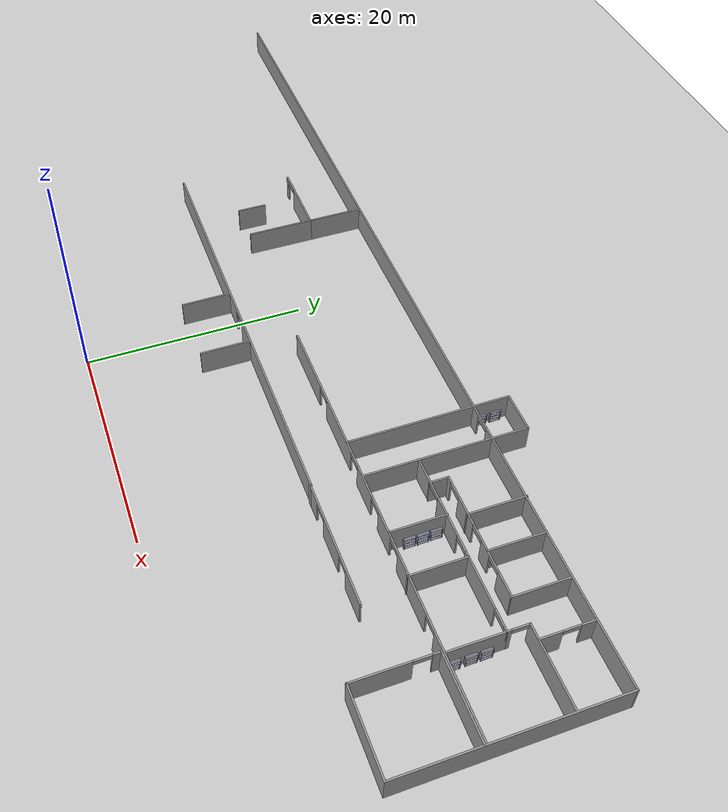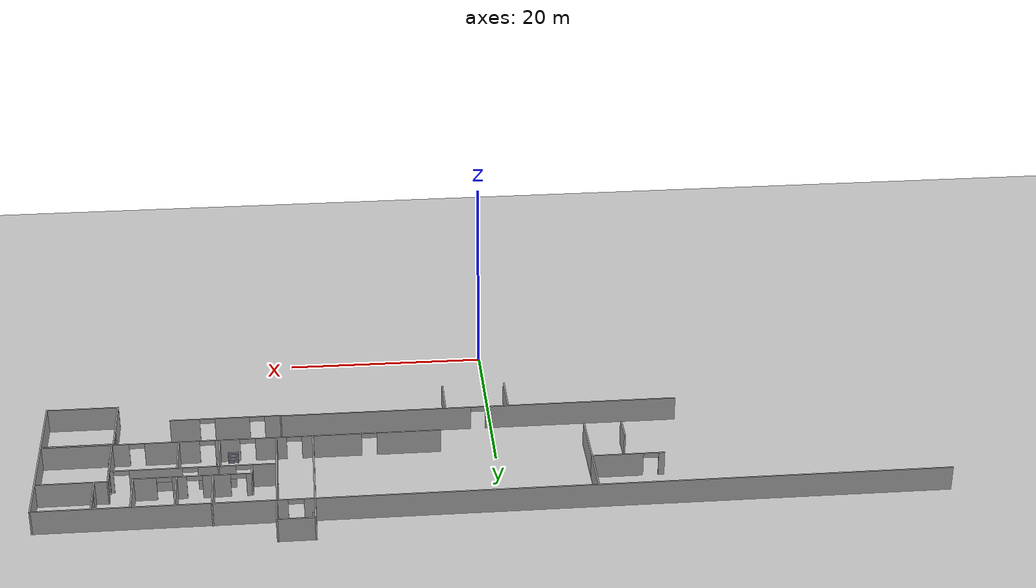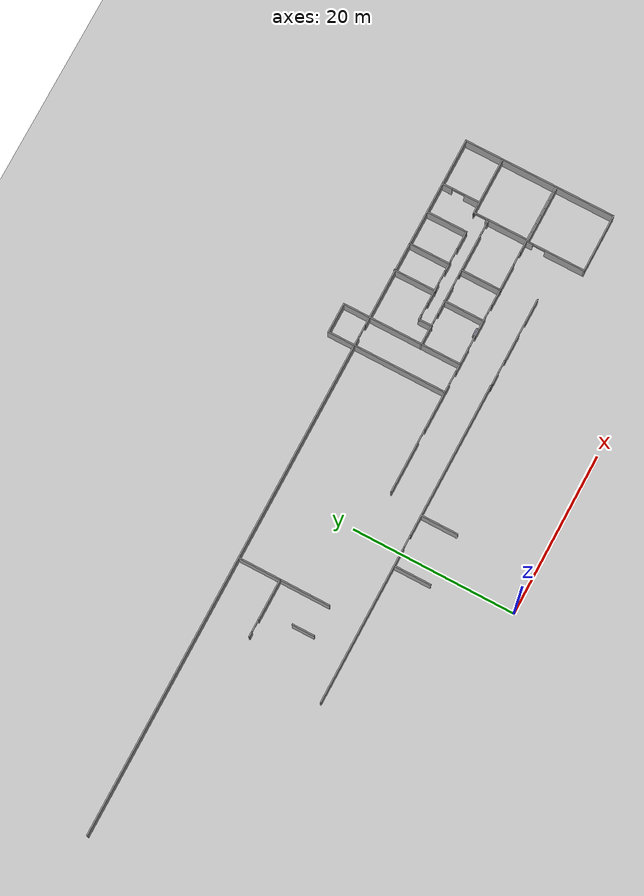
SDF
<sdf version="1.6">
 <world name="default">
  <model name="ground_plane">
   <static>1</static>
   <link name="link">
    <collision name="collision">
     <geometry><plane><normal>0 0 1</normal><size>100 100</size></plane></geometry>
     <surface><friction><ode><mu>100</mu><mu2>50</mu2></ode></friction></surface>
    </collision>
    <visual name="visual">
     <cast_shadows>0</cast_shadows>
     <geometry><plane><normal>0 0 1</normal><size>100 100</size></plane></geometry>
     <material>
      <script><uri>file://media/materials/scripts/gazebo.material</uri><name>Gazebo/Grey</name></script>
     </material>
    </visual>
   </link>
  </model>
  <model name="aule_N">
   <pose>0.3344 -1.4491 0 0 -0 0</pose>
   <link name="Wall_103">
    <pose>26.3919 15.3997 0 0 -0 3.14159</pose>
    <visual name="Wall_103_Visual_0">
     <pose>-4.01282 0 1.25 0 -0 0</pose>
     <geometry><box><size>2.97436 0.15 2.5</size></box></geometry>
     <material>
      <script><uri>file://media/materials/scripts/gazebo.material</uri><name>Gazebo/Grey</name></script>
      <ambient>1 1 1 1</ambient>
     </material>
    </visual>
    <collision name="Wall_103_Collision_0">
     <geometry><box><size>2.97436 0.15 2.5</size></box></geometry>
     <pose>-4.01282 0 1.25 0 -0 0</pose>
    </collision>
    <visual name="Wall_103_Visual_1">
     <pose>0.712222 0 1.25 0 -0 0</pose>
     <geometry><box><size>3.47573 0.15 2.5</size></box></geometry>
     <material>
      <script><uri>file://media/materials/scripts/gazebo.material</uri><name>Gazebo/Grey</name></script>
      <ambient>1 1 1 1</ambient>
     </material>
    </visual>
    <collision name="Wall_103_Collision_1">
     <geometry><box><size>3.47573 0.15 2.5</size></box></geometry>
     <pose>0.712222 0 1.25 0 -0 0</pose>
    </collision>
    <visual name="Wall_103_Visual_2">
     <pose>4.72504 0 1.25 0 -0 0</pose>
     <geometry><box><size>1.54991 0.15 2.5</size></box></geometry>
     <material>
      <script><uri>file://media/materials/scripts/gazebo.material</uri><name>Gazebo/Grey</name></script>
      <ambient>1 1 1 1</ambient>
     </material>
    </visual>
    <collision name="Wall_103_Collision_2">
     <geometry><box><size>1.54991 0.15 2.5</size></box></geometry>
     <pose>4.72504 0 1.25 0 -0 0</pose>
    </collision>
    <visual name="Wall_103_Visual_3">
     <pose>-1.77564 0 2.25 0 -0 0</pose>
     <geometry><box><size>1.5 0.15 0.5</size></box></geometry>
     <material>
      <script><uri>file://media/materials/scripts/gazebo.material</uri><name>Gazebo/Grey</name></script>
      <ambient>1 1 1 1</ambient>
     </material>
    </visual>
    <collision name="Wall_103_Collision_3">
     <geometry><box><size>1.5 0.15 0.5</size></box></geometry>
     <pose>-1.77564 0 2.25 0 -0 0</pose>
    </collision>
    <visual name="Wall_103_Visual_4">
     <pose>3.20009 0 2.25 0 -0 0</pose>
     <geometry><box><size>1.5 0.15 0.5</size></box></geometry>
     <material>
      <script><uri>file://media/materials/scripts/gazebo.material</uri><name>Gazebo/Grey</name></script>
      <ambient>1 1 1 1</ambient>
     </material>
    </visual>
    <collision name="Wall_103_Collision_4">
     <geometry><box><size>1.5 0.15 0.5</size></box></geometry>
     <pose>3.20009 0 2.25 0 -0 0</pose>
    </collision>
   </link>
   <link name="Wall_104">
    <collision name="Wall_104_Collision">
     <geometry><box><size>0.5 0.15 2.5</size></box></geometry>
     <pose>0 0 1.25 0 -0 0</pose>
    </collision>
    <visual name="Wall_104_Visual">
     <pose>0 0 1.25 0 -0 0</pose>
     <geometry><box><size>0.5 0.15 2.5</size></box></geometry>
     <material>
      <script><uri>file://media/materials/scripts/gazebo.material</uri><name>Gazebo/Grey</name></script>
      <ambient>1 1 1 1</ambient>
     </material>
    </visual>
    <pose>20.7919 15.3997 0 0 -0 3.14159</pose>
   </link>
   <link name="Wall_119">
    <pose>24.6226 19.6001 0 0 -0 0</pose>
    <visual name="Wall_119_Visual_0">
     <pose>-16.4435 0 1.25 0 -0 0</pose>
     <geometry><box><size>6.36296 0.15 2.5</size></box></geometry>
     <material>
      <script><uri>file://media/materials/scripts/gazebo.material</uri><name>Gazebo/Grey</name></script>
      <ambient>1 1 1 1</ambient>
     </material>
    </visual>
    <collision name="Wall_119_Collision_0">
     <geometry><box><size>6.36296 0.15 2.5</size></box></geometry>
     <pose>-16.4435 0 1.25 0 -0 0</pose>
    </collision>
    <visual name="Wall_119_Visual_1">
     <pose>-8.80227 0 1.25 0 -0 0</pose>
     <geometry><box><size>5.91956 0.15 2.5</size></box></geometry>
     <material>
      <script><uri>file://media/materials/scripts/gazebo.material</uri><name>Gazebo/Grey</name></script>
      <ambient>1 1 1 1</ambient>
     </material>
    </visual>
    <collision name="Wall_119_Collision_1">
     <geometry><box><size>5.91956 0.15 2.5</size></box></geometry>
     <pose>-8.80227 0 1.25 0 -0 0</pose>
    </collision>
    <visual name="Wall_119_Visual_2">
     <pose>-2.80072 0 1.25 0 -0 0</pose>
     <geometry><box><size>3.08352 0.15 2.5</size></box></geometry>
     <material>
      <script><uri>file://media/materials/scripts/gazebo.material</uri><name>Gazebo/Grey</name></script>
      <ambient>1 1 1 1</ambient>
     </material>
    </visual>
    <collision name="Wall_119_Collision_2">
     <geometry><box><size>3.08352 0.15 2.5</size></box></geometry>
     <pose>-2.80072 0 1.25 0 -0 0</pose>
    </collision>
    <visual name="Wall_119_Visual_3">
     <pose>1.4683 0 1.25 0 -0 0</pose>
     <geometry><box><size>2.45453 0.15 2.5</size></box></geometry>
     <material>
      <script><uri>file://media/materials/scripts/gazebo.material</uri><name>Gazebo/Grey</name></script>
      <ambient>1 1 1 1</ambient>
     </material>
    </visual>
    <collision name="Wall_119_Collision_3">
     <geometry><box><size>2.45453 0.15 2.5</size></box></geometry>
     <pose>1.4683 0 1.25 0 -0 0</pose>
    </collision>
    <visual name="Wall_119_Visual_4">
     <pose>6.88834 0 1.25 0 -0 0</pose>
     <geometry><box><size>5.38554 0.15 2.5</size></box></geometry>
     <material>
      <script><uri>file://media/materials/scripts/gazebo.material</uri><name>Gazebo/Grey</name></script>
      <ambient>1 1 1 1</ambient>
     </material>
    </visual>
    <collision name="Wall_119_Collision_4">
     <geometry><box><size>5.38554 0.15 2.5</size></box></geometry>
     <pose>6.88834 0 1.25 0 -0 0</pose>
    </collision>
    <visual name="Wall_119_Visual_5">
     <pose>15.3531 0 1.25 0 -0 0</pose>
     <geometry><box><size>8.54389 0.15 2.5</size></box></geometry>
     <material>
      <script><uri>file://media/materials/scripts/gazebo.material</uri><name>Gazebo/Grey</name></script>
      <ambient>1 1 1 1</ambient>
     </material>
    </visual>
    <collision name="Wall_119_Collision_5">
     <geometry><box><size>8.54389 0.15 2.5</size></box></geometry>
     <pose>15.3531 0 1.25 0 -0 0</pose>
    </collision>
    <visual name="Wall_119_Visual_6">
     <pose>-12.512 0 2.25 0 -0 0</pose>
     <geometry><box><size>1.5 0.15 0.5</size></box></geometry>
     <material>
      <script><uri>file://media/materials/scripts/gazebo.material</uri><name>Gazebo/Grey</name></script>
      <ambient>1 1 1 1</ambient>
     </material>
    </visual>
    <collision name="Wall_119_Collision_6">
     <geometry><box><size>1.5 0.15 0.5</size></box></geometry>
     <pose>-12.512 0 2.25 0 -0 0</pose>
    </collision>
    <visual name="Wall_119_Visual_7">
     <pose>-5.09248 0 2.25 0 -0 0</pose>
     <geometry><box><size>1.5 0.15 0.5</size></box></geometry>
     <material>
      <script><uri>file://media/materials/scripts/gazebo.material</uri><name>Gazebo/Grey</name></script>
      <ambient>1 1 1 1</ambient>
     </material>
    </visual>
    <collision name="Wall_119_Collision_7">
     <geometry><box><size>1.5 0.15 0.5</size></box></geometry>
     <pose>-5.09248 0 2.25 0 -0 0</pose>
    </collision>
    <visual name="Wall_119_Visual_8">
     <pose>-0.508963 0 2.25 0 -0 0</pose>
     <geometry><box><size>1.5 0.15 0.5</size></box></geometry>
     <material>
      <script><uri>file://media/materials/scripts/gazebo.material</uri><name>Gazebo/Grey</name></script>
      <ambient>1 1 1 1</ambient>
     </material>
    </visual>
    <collision name="Wall_119_Collision_8">
     <geometry><box><size>1.5 0.15 0.5</size></box></geometry>
     <pose>-0.508963 0 2.25 0 -0 0</pose>
    </collision>
    <visual name="Wall_119_Visual_9">
     <pose>3.44557 0 2.25 0 -0 0</pose>
     <geometry><box><size>1.5 0.15 0.5</size></box></geometry>
     <material>
      <script><uri>file://media/materials/scripts/gazebo.material</uri><name>Gazebo/Grey</name></script>
      <ambient>1 1 1 1</ambient>
     </material>
    </visual>
    <collision name="Wall_119_Collision_9">
     <geometry><box><size>1.5 0.15 0.5</size></box></geometry>
     <pose>3.44557 0 2.25 0 -0 0</pose>
    </collision>
    <visual name="Wall_119_Visual_10">
     <pose>10.3311 0 2.25 0 -0 0</pose>
     <geometry><box><size>1.5 0.15 0.5</size></box></geometry>
     <material>
      <script><uri>file://media/materials/scripts/gazebo.material</uri><name>Gazebo/Grey</name></script>
      <ambient>1 1 1 1</ambient>
     </material>
    </visual>
    <collision name="Wall_119_Collision_10">
     <geometry><box><size>1.5 0.15 0.5</size></box></geometry>
     <pose>10.3311 0 2.25 0 -0 0</pose>
    </collision>
   </link>
   <link name="Wall_133">
    <collision name="Wall_133_Collision">
     <geometry><box><size>2.75 0.15 2.5</size></box></geometry>
     <pose>0 0 1.25 0 -0 0</pose>
    </collision>
    <visual name="Wall_133_Visual">
     <pose>0 0 1.25 0 -0 0</pose>
     <geometry><box><size>2.75 0.15 2.5</size></box></geometry>
     <material>
      <script><uri>file://media/materials/scripts/gazebo.material</uri><name>Gazebo/Grey</name></script>
      <ambient>1 1 1 1</ambient>
     </material>
    </visual>
    <pose>-13.0958 20.8964 0 0 0 -1.5708</pose>
   </link>
   <link name="Wall_135">
    <pose>-12.9035 25.7612 0 0 -0 0</pose>
    <visual name="Wall_135_Visual_0">
     <pose>-3.3201 0 1.25 0 -0 0</pose>
     <geometry><box><size>0.60979 0.15 2.5</size></box></geometry>
     <material>
      <script><uri>file://media/materials/scripts/gazebo.material</uri><name>Gazebo/Grey</name></script>
      <ambient>1 1 1 1</ambient>
     </material>
    </visual>
    <collision name="Wall_135_Collision_0">
     <geometry><box><size>0.60979 0.15 2.5</size></box></geometry>
     <pose>-3.3201 0 1.25 0 -0 0</pose>
    </collision>
    <visual name="Wall_135_Visual_1">
     <pose>1.05489 0 1.25 0 -0 0</pose>
     <geometry><box><size>5.14021 0.15 2.5</size></box></geometry>
     <material>
      <script><uri>file://media/materials/scripts/gazebo.material</uri><name>Gazebo/Grey</name></script>
      <ambient>1 1 1 1</ambient>
     </material>
    </visual>
    <collision name="Wall_135_Collision_1">
     <geometry><box><size>5.14021 0.15 2.5</size></box></geometry>
     <pose>1.05489 0 1.25 0 -0 0</pose>
    </collision>
    <visual name="Wall_135_Visual_2">
     <pose>-2.26521 0 2.25 0 -0 0</pose>
     <geometry><box><size>1.5 0.15 0.5</size></box></geometry>
     <material>
      <script><uri>file://media/materials/scripts/gazebo.material</uri><name>Gazebo/Grey</name></script>
      <ambient>1 1 1 1</ambient>
     </material>
    </visual>
    <collision name="Wall_135_Collision_2">
     <geometry><box><size>1.5 0.15 0.5</size></box></geometry>
     <pose>-2.26521 0 2.25 0 -0 0</pose>
    </collision>
   </link>
   <link name="Wall_136">
    <collision name="Wall_136_Collision">
     <geometry><box><size>5.25 0.15 2.5</size></box></geometry>
     <pose>0 0 1.25 0 -0 0</pose>
    </collision>
    <visual name="Wall_136_Visual">
     <pose>0 0 1.25 0 -0 0</pose>
     <geometry><box><size>5.25 0.15 2.5</size></box></geometry>
     <material>
      <script><uri>file://media/materials/scripts/gazebo.material</uri><name>Gazebo/Grey</name></script>
      <ambient>1 1 1 1</ambient>
     </material>
    </visual>
    <pose>-9.35351 28.3112 0 0 -0 1.5708</pose>
   </link>
   <link name="Wall_138">
    <collision name="Wall_138_Collision">
     <geometry><box><size>6.25 0.15 2.5</size></box></geometry>
     <pose>0 0 1.25 0 -0 0</pose>
    </collision>
    <visual name="Wall_138_Visual">
     <pose>0 0 1.25 0 -0 0</pose>
     <geometry><box><size>6.25 0.15 2.5</size></box></geometry>
     <material>
      <script><uri>file://media/materials/scripts/gazebo.material</uri><name>Gazebo/Grey</name></script>
      <ambient>1 1 1 1</ambient>
     </material>
    </visual>
    <pose>-9.35351 22.7112 0 0 0 -1.5708</pose>
   </link>
   <link name="Wall_142">
    <collision name="Wall_142_Collision">
     <geometry><box><size>14.75 0.15 2.5</size></box></geometry>
     <pose>0 0 1.25 0 -0 0</pose>
    </collision>
    <visual name="Wall_142_Visual">
     <pose>0 0 1.25 0 -0 0</pose>
     <geometry><box><size>14.75 0.15 2.5</size></box></geometry>
     <material>
      <script><uri>file://media/materials/scripts/gazebo.material</uri><name>Gazebo/Grey</name></script>
      <ambient>1 1 1 1</ambient>
     </material>
    </visual>
    <pose>17.6842 26.9006 0 0 -0 1.5708</pose>
   </link>
   <link name="Wall_143">
    <collision name="Wall_143_Collision">
     <geometry><box><size>3.75 0.15 2.5</size></box></geometry>
     <pose>0 0 1.25 0 -0 0</pose>
    </collision>
    <visual name="Wall_143_Visual">
     <pose>0 0 1.25 0 -0 0</pose>
     <geometry><box><size>3.75 0.15 2.5</size></box></geometry>
     <material>
      <script><uri>file://media/materials/scripts/gazebo.material</uri><name>Gazebo/Grey</name></script>
      <ambient>1 1 1 1</ambient>
     </material>
    </visual>
    <pose>19.4842 34.2006 0 0 -0 0</pose>
   </link>
   <link name="Wall_144">
    <collision name="Wall_144_Collision">
     <geometry><box><size>14.75 0.15 2.5</size></box></geometry>
     <pose>0 0 1.25 0 -0 0</pose>
    </collision>
    <visual name="Wall_144_Visual">
     <pose>0 0 1.25 0 -0 0</pose>
     <geometry><box><size>14.75 0.15 2.5</size></box></geometry>
     <material>
      <script><uri>file://media/materials/scripts/gazebo.material</uri><name>Gazebo/Grey</name></script>
      <ambient>1 1 1 1</ambient>
     </material>
    </visual>
    <pose>21.2842 26.9006 0 0 0 -1.5708</pose>
   </link>
   <link name="Wall_147">
    <collision name="Wall_147_Collision">
     <geometry><box><size>4.5 0.15 2.5</size></box></geometry>
     <pose>0 0 1.25 0 -0 0</pose>
    </collision>
    <visual name="Wall_147_Visual">
     <pose>0 0 1.25 0 -0 0</pose>
     <geometry><box><size>4.5 0.15 2.5</size></box></geometry>
     <material>
      <script><uri>file://media/materials/scripts/gazebo.material</uri><name>Gazebo/Grey</name></script>
      <ambient>1 1 1 1</ambient>
     </material>
    </visual>
    <pose>-2.1259 13.1481 0 0 0 -1.5708</pose>
   </link>
   <link name="Wall_149">
    <collision name="Wall_149_Collision">
     <geometry><box><size>4.5 0.15 2.5</size></box></geometry>
     <pose>0 0 1.25 0 -0 0</pose>
    </collision>
    <visual name="Wall_149_Visual">
     <pose>0 0 1.25 0 -0 0</pose>
     <geometry><box><size>4.5 0.15 2.5</size></box></geometry>
     <material>
      <script><uri>file://media/materials/scripts/gazebo.material</uri><name>Gazebo/Grey</name></script>
      <ambient>1 1 1 1</ambient>
     </material>
    </visual>
    <pose>4.2241 13.1481 0 0 -0 1.5708</pose>
   </link>
   <link name="Wall_151">
    <pose>37.2203 15.8955 0 0 -0 1.5708</pose>
    <visual name="Wall_151_Visual_0">
     <pose>-1.12447 0 1.25 0 -0 0</pose>
     <geometry><box><size>5.00105 0.15 2.5</size></box></geometry>
     <material>
      <script><uri>file://media/materials/scripts/gazebo.material</uri><name>Gazebo/Grey</name></script>
      <ambient>1 1 1 1</ambient>
     </material>
    </visual>
    <collision name="Wall_151_Collision_0">
     <geometry><box><size>5.00105 0.15 2.5</size></box></geometry>
     <pose>-1.12447 0 1.25 0 -0 0</pose>
    </collision>
    <visual name="Wall_151_Visual_1">
     <pose>3.25053 0 1.25 0 -0 0</pose>
     <geometry><box><size>0.748949 0.15 2.5</size></box></geometry>
     <material>
      <script><uri>file://media/materials/scripts/gazebo.material</uri><name>Gazebo/Grey</name></script>
      <ambient>1 1 1 1</ambient>
     </material>
    </visual>
    <collision name="Wall_151_Collision_1">
     <geometry><box><size>0.748949 0.15 2.5</size></box></geometry>
     <pose>3.25053 0 1.25 0 -0 0</pose>
    </collision>
    <visual name="Wall_151_Visual_2">
     <pose>2.12605 0 2.25 0 -0 0</pose>
     <geometry><box><size>1.5 0.15 0.5</size></box></geometry>
     <material>
      <script><uri>file://media/materials/scripts/gazebo.material</uri><name>Gazebo/Grey</name></script>
      <ambient>1 1 1 1</ambient>
     </material>
    </visual>
    <collision name="Wall_151_Collision_2">
     <geometry><box><size>1.5 0.15 0.5</size></box></geometry>
     <pose>2.12605 0 2.25 0 -0 0</pose>
    </collision>
   </link>
   <link name="Wall_152">
    <collision name="Wall_152_Collision">
     <geometry><box><size>7.25 0.15 2.5</size></box></geometry>
     <pose>0 0 1.25 0 -0 0</pose>
    </collision>
    <visual name="Wall_152_Visual">
     <pose>0 0 1.25 0 -0 0</pose>
     <geometry><box><size>7.25 0.15 2.5</size></box></geometry>
     <material>
      <script><uri>file://media/materials/scripts/gazebo.material</uri><name>Gazebo/Grey</name></script>
      <ambient>1 1 1 1</ambient>
     </material>
    </visual>
    <pose>40.7703 19.4455 0 0 -0 0</pose>
   </link>
   <link name="Wall_154">
    <pose>29.3256 24.4418 0 0 -0 0</pose>
    <visual name="Wall_154_Visual_0">
     <pose>-6.88088 0 1.25 0 -0 0</pose>
     <geometry><box><size>2.48824 0.15 2.5</size></box></geometry>
     <material>
      <script><uri>file://media/materials/scripts/gazebo.material</uri><name>Gazebo/Grey</name></script>
      <ambient>1 1 1 1</ambient>
     </material>
    </visual>
    <collision name="Wall_154_Collision_0">
     <geometry><box><size>2.48824 0.15 2.5</size></box></geometry>
     <pose>-6.88088 0 1.25 0 -0 0</pose>
    </collision>
    <visual name="Wall_154_Visual_1">
     <pose>-2.30449 0 1.25 0 -0 0</pose>
     <geometry><box><size>3.66454 0.15 2.5</size></box></geometry>
     <material>
      <script><uri>file://media/materials/scripts/gazebo.material</uri><name>Gazebo/Grey</name></script>
      <ambient>1 1 1 1</ambient>
     </material>
    </visual>
    <collision name="Wall_154_Collision_1">
     <geometry><box><size>3.66454 0.15 2.5</size></box></geometry>
     <pose>-2.30449 0 1.25 0 -0 0</pose>
    </collision>
    <visual name="Wall_154_Visual_2">
     <pose>3.58098 0 1.25 0 -0 0</pose>
     <geometry><box><size>5.10639 0.15 2.5</size></box></geometry>
     <material>
      <script><uri>file://media/materials/scripts/gazebo.material</uri><name>Gazebo/Grey</name></script>
      <ambient>1 1 1 1</ambient>
     </material>
    </visual>
    <collision name="Wall_154_Collision_2">
     <geometry><box><size>5.10639 0.15 2.5</size></box></geometry>
     <pose>3.58098 0 1.25 0 -0 0</pose>
    </collision>
    <visual name="Wall_154_Visual_3">
     <pose>7.87959 0 1.25 0 -0 0</pose>
     <geometry><box><size>0.490824 0.15 2.5</size></box></geometry>
     <material>
      <script><uri>file://media/materials/scripts/gazebo.material</uri><name>Gazebo/Grey</name></script>
      <ambient>1 1 1 1</ambient>
     </material>
    </visual>
    <collision name="Wall_154_Collision_3">
     <geometry><box><size>0.490824 0.15 2.5</size></box></geometry>
     <pose>7.87959 0 1.25 0 -0 0</pose>
    </collision>
    <visual name="Wall_154_Visual_4">
     <pose>-4.88676 0 2.25 0 -0 0</pose>
     <geometry><box><size>1.5 0.15 0.5</size></box></geometry>
     <material>
      <script><uri>file://media/materials/scripts/gazebo.material</uri><name>Gazebo/Grey</name></script>
      <ambient>1 1 1 1</ambient>
     </material>
    </visual>
    <collision name="Wall_154_Collision_4">
     <geometry><box><size>1.5 0.15 0.5</size></box></geometry>
     <pose>-4.88676 0 2.25 0 -0 0</pose>
    </collision>
    <visual name="Wall_154_Visual_5">
     <pose>0.277782 0 2.25 0 -0 0</pose>
     <geometry><box><size>1.5 0.15 0.5</size></box></geometry>
     <material>
      <script><uri>file://media/materials/scripts/gazebo.material</uri><name>Gazebo/Grey</name></script>
      <ambient>1 1 1 1</ambient>
     </material>
    </visual>
    <collision name="Wall_154_Collision_5">
     <geometry><box><size>1.5 0.15 0.5</size></box></geometry>
     <pose>0.277782 0 2.25 0 -0 0</pose>
    </collision>
    <visual name="Wall_154_Visual_6">
     <pose>6.88418 0 2.25 0 -0 0</pose>
     <geometry><box><size>1.5 0.15 0.5</size></box></geometry>
     <material>
      <script><uri>file://media/materials/scripts/gazebo.material</uri><name>Gazebo/Grey</name></script>
      <ambient>1 1 1 1</ambient>
     </material>
    </visual>
    <collision name="Wall_154_Collision_6">
     <geometry><box><size>1.5 0.15 0.5</size></box></geometry>
     <pose>6.88418 0 2.25 0 -0 0</pose>
    </collision>
   </link>
   <link name="Wall_155">
    <collision name="Wall_155_Collision">
     <geometry><box><size>5 0.15 2.5</size></box></geometry>
     <pose>0 0 1.25 0 -0 0</pose>
    </collision>
    <visual name="Wall_155_Visual">
     <pose>0 0 1.25 0 -0 0</pose>
     <geometry><box><size>5 0.15 2.5</size></box></geometry>
     <material>
      <script><uri>file://media/materials/scripts/gazebo.material</uri><name>Gazebo/Grey</name></script>
      <ambient>1 1 1 1</ambient>
     </material>
    </visual>
    <pose>37.3756 22.0168 0 0 0 -1.5708</pose>
   </link>
   <link name="Wall_157">
    <collision name="Wall_157_Collision">
     <geometry><box><size>5 0.15 2.5</size></box></geometry>
     <pose>0 0 1.25 0 -0 0</pose>
    </collision>
    <visual name="Wall_157_Visual">
     <pose>0 0 1.25 0 -0 0</pose>
     <geometry><box><size>5 0.15 2.5</size></box></geometry>
     <material>
      <script><uri>file://media/materials/scripts/gazebo.material</uri><name>Gazebo/Grey</name></script>
      <ambient>1 1 1 1</ambient>
     </material>
    </visual>
    <pose>26.8585 22.0634 0 0 0 -1.5708</pose>
   </link>
   <link name="Wall_159">
    <collision name="Wall_159_Collision">
     <geometry><box><size>5 0.15 2.5</size></box></geometry>
     <pose>0 0 1.25 0 -0 0</pose>
    </collision>
    <visual name="Wall_159_Visual">
     <pose>0 0 1.25 0 -0 0</pose>
     <geometry><box><size>5 0.15 2.5</size></box></geometry>
     <material>
      <script><uri>file://media/materials/scripts/gazebo.material</uri><name>Gazebo/Grey</name></script>
      <ambient>1 1 1 1</ambient>
     </material>
    </visual>
    <pose>30.8596 21.9703 0 0 0 -1.5708</pose>
   </link>
   <link name="Wall_161">
    <pose>37.3756 25.3668 0 0 -0 1.5708</pose>
    <visual name="Wall_161_Visual_0">
     <pose>-0.779213 0 1.25 0 -0 0</pose>
     <geometry><box><size>0.441574 0.15 2.5</size></box></geometry>
     <material>
      <script><uri>file://media/materials/scripts/gazebo.material</uri><name>Gazebo/Grey</name></script>
      <ambient>1 1 1 1</ambient>
     </material>
    </visual>
    <collision name="Wall_161_Collision_0">
     <geometry><box><size>0.441574 0.15 2.5</size></box></geometry>
     <pose>-0.779213 0 1.25 0 -0 0</pose>
    </collision>
    <visual name="Wall_161_Visual_1">
     <pose>0.970787 0 1.25 0 -0 0</pose>
     <geometry><box><size>0.058426 0.15 2.5</size></box></geometry>
     <material>
      <script><uri>file://media/materials/scripts/gazebo.material</uri><name>Gazebo/Grey</name></script>
      <ambient>1 1 1 1</ambient>
     </material>
    </visual>
    <collision name="Wall_161_Collision_1">
     <geometry><box><size>0.058426 0.15 2.5</size></box></geometry>
     <pose>0.970787 0 1.25 0 -0 0</pose>
    </collision>
    <visual name="Wall_161_Visual_2">
     <pose>0.191574 0 2.25 0 -0 0</pose>
     <geometry><box><size>1.5 0.15 0.5</size></box></geometry>
     <material>
      <script><uri>file://media/materials/scripts/gazebo.material</uri><name>Gazebo/Grey</name></script>
      <ambient>1 1 1 1</ambient>
     </material>
    </visual>
    <collision name="Wall_161_Collision_2">
     <geometry><box><size>1.5 0.15 0.5</size></box></geometry>
     <pose>0.191574 0 2.25 0 -0 0</pose>
    </collision>
   </link>
   <link name="Wall_172">
    <collision name="Wall_172_Collision">
     <geometry><box><size>1.75 0.15 2.5</size></box></geometry>
     <pose>0 0 1.25 0 -0 0</pose>
    </collision>
    <visual name="Wall_172_Visual">
     <pose>0 0 1.25 0 -0 0</pose>
     <geometry><box><size>1.75 0.15 2.5</size></box></geometry>
     <material>
      <script><uri>file://media/materials/scripts/gazebo.material</uri><name>Gazebo/Grey</name></script>
      <ambient>1 1 1 1</ambient>
     </material>
    </visual>
    <pose>23.6484 25.1953 0 0 -0 1.5708</pose>
   </link>
   <link name="Wall_173">
    <pose>29.3234 25.9953 0 0 -0 0</pose>
    <visual name="Wall_173_Visual_0">
     <pose>-5.43624 0 1.25 0 -0 0</pose>
     <geometry><box><size>0.627523 0.15 2.5</size></box></geometry>
     <material>
      <script><uri>file://media/materials/scripts/gazebo.material</uri><name>Gazebo/Grey</name></script>
      <ambient>1 1 1 1</ambient>
     </material>
    </visual>
    <collision name="Wall_173_Collision_0">
     <geometry><box><size>0.627523 0.15 2.5</size></box></geometry>
     <pose>-5.43624 0 1.25 0 -0 0</pose>
    </collision>
    <visual name="Wall_173_Visual_1">
     <pose>-2.27883 0 1.25 0 -0 0</pose>
     <geometry><box><size>2.6873 0.15 2.5</size></box></geometry>
     <material>
      <script><uri>file://media/materials/scripts/gazebo.material</uri><name>Gazebo/Grey</name></script>
      <ambient>1 1 1 1</ambient>
     </material>
    </visual>
    <collision name="Wall_173_Collision_1">
     <geometry><box><size>2.6873 0.15 2.5</size></box></geometry>
     <pose>-2.27883 0 1.25 0 -0 0</pose>
    </collision>
    <visual name="Wall_173_Visual_2">
     <pose>1.25706 0 1.25 0 -0 0</pose>
     <geometry><box><size>1.38448 0.15 2.5</size></box></geometry>
     <material>
      <script><uri>file://media/materials/scripts/gazebo.material</uri><name>Gazebo/Grey</name></script>
      <ambient>1 1 1 1</ambient>
     </material>
    </visual>
    <collision name="Wall_173_Collision_2">
     <geometry><box><size>1.38448 0.15 2.5</size></box></geometry>
     <pose>1.25706 0 1.25 0 -0 0</pose>
    </collision>
    <visual name="Wall_173_Visual_3">
     <pose>4.59965 0 1.25 0 -0 0</pose>
     <geometry><box><size>2.3007 0.15 2.5</size></box></geometry>
     <material>
      <script><uri>file://media/materials/scripts/gazebo.material</uri><name>Gazebo/Grey</name></script>
      <ambient>1 1 1 1</ambient>
     </material>
    </visual>
    <collision name="Wall_173_Collision_3">
     <geometry><box><size>2.3007 0.15 2.5</size></box></geometry>
     <pose>4.59965 0 1.25 0 -0 0</pose>
    </collision>
    <visual name="Wall_173_Visual_4">
     <pose>-4.37248 0 2.25 0 -0 0</pose>
     <geometry><box><size>1.5 0.15 0.5</size></box></geometry>
     <material>
      <script><uri>file://media/materials/scripts/gazebo.material</uri><name>Gazebo/Grey</name></script>
      <ambient>1 1 1 1</ambient>
     </material>
    </visual>
    <collision name="Wall_173_Collision_4">
     <geometry><box><size>1.5 0.15 0.5</size></box></geometry>
     <pose>-4.37248 0 2.25 0 -0 0</pose>
    </collision>
    <visual name="Wall_173_Visual_5">
     <pose>-0.185179 0 2.25 0 -0 0</pose>
     <geometry><box><size>1.5 0.15 0.5</size></box></geometry>
     <material>
      <script><uri>file://media/materials/scripts/gazebo.material</uri><name>Gazebo/Grey</name></script>
      <ambient>1 1 1 1</ambient>
     </material>
    </visual>
    <collision name="Wall_173_Collision_5">
     <geometry><box><size>1.5 0.15 0.5</size></box></geometry>
     <pose>-0.185179 0 2.25 0 -0 0</pose>
    </collision>
    <visual name="Wall_173_Visual_6">
     <pose>2.6993 0 2.25 0 -0 0</pose>
     <geometry><box><size>1.5 0.15 0.5</size></box></geometry>
     <material>
      <script><uri>file://media/materials/scripts/gazebo.material</uri><name>Gazebo/Grey</name></script>
      <ambient>1 1 1 1</ambient>
     </material>
    </visual>
    <collision name="Wall_173_Collision_6">
     <geometry><box><size>1.5 0.15 0.5</size></box></geometry>
     <pose>2.6993 0 2.25 0 -0 0</pose>
    </collision>
   </link>
   <link name="Wall_174">
    <collision name="Wall_174_Collision">
     <geometry><box><size>5 0.15 2.5</size></box></geometry>
     <pose>0 0 1.25 0 -0 0</pose>
    </collision>
    <visual name="Wall_174_Visual">
     <pose>0 0 1.25 0 -0 0</pose>
     <geometry><box><size>5 0.15 2.5</size></box></geometry>
     <material>
      <script><uri>file://media/materials/scripts/gazebo.material</uri><name>Gazebo/Grey</name></script>
      <ambient>1 1 1 1</ambient>
     </material>
    </visual>
    <pose>34.9984 28.4203 0 0 -0 1.5708</pose>
   </link>
   <link name="Wall_176">
    <collision name="Wall_176_Collision">
     <geometry><box><size>5.25 0.15 2.5</size></box></geometry>
     <pose>0 0 1.25 0 -0 0</pose>
    </collision>
    <visual name="Wall_176_Visual">
     <pose>0 0 1.25 0 -0 0</pose>
     <geometry><box><size>5.25 0.15 2.5</size></box></geometry>
     <material>
      <script><uri>file://media/materials/scripts/gazebo.material</uri><name>Gazebo/Grey</name></script>
      <ambient>1 1 1 1</ambient>
     </material>
    </visual>
    <pose>27.3703 28.4806 0 0 -0 1.5708</pose>
   </link>
   <link name="Wall_178">
    <collision name="Wall_178_Collision">
     <geometry><box><size>5 0.15 2.5</size></box></geometry>
     <pose>0 0 1.25 0 -0 0</pose>
    </collision>
    <visual name="Wall_178_Visual">
     <pose>0 0 1.25 0 -0 0</pose>
     <geometry><box><size>5 0.15 2.5</size></box></geometry>
     <material>
      <script><uri>file://media/materials/scripts/gazebo.material</uri><name>Gazebo/Grey</name></script>
      <ambient>1 1 1 1</ambient>
     </material>
    </visual>
    <pose>30.8596 28.4952 0 0 -0 1.5708</pose>
   </link>
   <link name="Wall_182">
    <collision name="Wall_182_Collision">
     <geometry><box><size>7 0.15 2.5</size></box></geometry>
     <pose>0 0 1.25 0 -0 0</pose>
    </collision>
    <visual name="Wall_182_Visual">
     <pose>0 0 1.25 0 -0 0</pose>
     <geometry><box><size>7 0.15 2.5</size></box></geometry>
     <material>
      <script><uri>file://media/materials/scripts/gazebo.material</uri><name>Gazebo/Grey</name></script>
      <ambient>1 1 1 1</ambient>
     </material>
    </visual>
    <pose>40.8006 26.2918 0 0 -0 0</pose>
   </link>
   <link name="Wall_184">
    <pose>38.6756 28.6028 0 0 -0 1.5708</pose>
    <visual name="Wall_184_Visual_0">
     <pose>-1.38657 0 1.25 0 -0 0</pose>
     <geometry><box><size>1.97686 0.15 2.5</size></box></geometry>
     <material>
      <script><uri>file://media/materials/scripts/gazebo.material</uri><name>Gazebo/Grey</name></script>
      <ambient>1 1 1 1</ambient>
     </material>
    </visual>
    <collision name="Wall_184_Collision_0">
     <geometry><box><size>1.97686 0.15 2.5</size></box></geometry>
     <pose>-1.38657 0 1.25 0 -0 0</pose>
    </collision>
    <visual name="Wall_184_Visual_1">
     <pose>1.73843 0 1.25 0 -0 0</pose>
     <geometry><box><size>1.27314 0.15 2.5</size></box></geometry>
     <material>
      <script><uri>file://media/materials/scripts/gazebo.material</uri><name>Gazebo/Grey</name></script>
      <ambient>1 1 1 1</ambient>
     </material>
    </visual>
    <collision name="Wall_184_Collision_1">
     <geometry><box><size>1.27314 0.15 2.5</size></box></geometry>
     <pose>1.73843 0 1.25 0 -0 0</pose>
    </collision>
    <visual name="Wall_184_Visual_2">
     <pose>0.351864 0 2.25 0 -0 0</pose>
     <geometry><box><size>1.5 0.15 0.5</size></box></geometry>
     <material>
      <script><uri>file://media/materials/scripts/gazebo.material</uri><name>Gazebo/Grey</name></script>
      <ambient>1 1 1 1</ambient>
     </material>
    </visual>
    <collision name="Wall_184_Collision_2">
     <geometry><box><size>1.5 0.15 0.5</size></box></geometry>
     <pose>0.351864 0 2.25 0 -0 0</pose>
    </collision>
   </link>
   <link name="Wall_38">
    <collision name="Wall_38_Collision">
     <geometry><box><size>7.25 0.15 2.5</size></box></geometry>
     <pose>0 0 1.25 0 -0 0</pose>
    </collision>
    <visual name="Wall_38_Visual">
     <pose>0 0 1.25 0 -0 0</pose>
     <geometry><box><size>7.25 0.15 2.5</size></box></geometry>
     <material>
      <script><uri>file://media/materials/scripts/gazebo.material</uri><name>Gazebo/Grey</name></script>
      <ambient>1 1 1 1</ambient>
     </material>
    </visual>
    <pose>40.7703 12.3455 0 0 -0 0</pose>
   </link>
   <link name="Wall_41">
    <collision name="Wall_41_Collision">
     <geometry><box><size>18.75 0.15 2.5</size></box></geometry>
     <pose>0 0 1.25 0 -0 0</pose>
    </collision>
    <visual name="Wall_41_Visual">
     <pose>0 0 1.25 0 -0 0</pose>
     <geometry><box><size>18.75 0.15 2.5</size></box></geometry>
     <material>
      <script><uri>file://media/materials/scripts/gazebo.material</uri><name>Gazebo/Grey</name></script>
      <ambient>1 1 1 1</ambient>
     </material>
    </visual>
    <pose>44.3203 21.6455 0 0 -0 1.5708</pose>
   </link>
   <link name="Wall_42">
    <pose>0.270301 30.9455 0 0 -0 3.14159</pose>
    <visual name="Wall_42_Visual_0">
     <pose>-32.0366 0 1.25 0 -0 0</pose>
     <geometry><box><size>24.1768 0.15 2.5</size></box></geometry>
     <material>
      <script><uri>file://media/materials/scripts/gazebo.material</uri><name>Gazebo/Grey</name></script>
      <ambient>1 1 1 1</ambient>
     </material>
    </visual>
    <collision name="Wall_42_Collision_0">
     <geometry><box><size>24.1768 0.15 2.5</size></box></geometry>
     <pose>-32.0366 0 1.25 0 -0 0</pose>
    </collision>
    <visual name="Wall_42_Visual_1">
     <pose>12.8384 0 1.25 0 -0 0</pose>
     <geometry><box><size>62.5732 0.15 2.5</size></box></geometry>
     <material>
      <script><uri>file://media/materials/scripts/gazebo.material</uri><name>Gazebo/Grey</name></script>
      <ambient>1 1 1 1</ambient>
     </material>
    </visual>
    <collision name="Wall_42_Collision_1">
     <geometry><box><size>62.5732 0.15 2.5</size></box></geometry>
     <pose>12.8384 0 1.25 0 -0 0</pose>
    </collision>
    <visual name="Wall_42_Visual_2">
     <pose>-19.1982 0 2.25 0 -0 0</pose>
     <geometry><box><size>1.5 0.15 0.5</size></box></geometry>
     <material>
      <script><uri>file://media/materials/scripts/gazebo.material</uri><name>Gazebo/Grey</name></script>
      <ambient>1 1 1 1</ambient>
     </material>
    </visual>
    <collision name="Wall_42_Collision_2">
     <geometry><box><size>1.5 0.15 0.5</size></box></geometry>
     <pose>-19.1982 0 2.25 0 -0 0</pose>
    </collision>
   </link>
   <link name="Wall_48">
    <pose>0.767861 15.4639 0 0 -0 3.14159</pose>
    <visual name="Wall_48_Visual_0">
     <pose>-10.4634 0 1.25 0 -0 0</pose>
     <geometry><box><size>19.0732 0.15 2.5</size></box></geometry>
     <material>
      <script><uri>file://media/materials/scripts/gazebo.material</uri><name>Gazebo/Grey</name></script>
      <ambient>1 1 1 1</ambient>
     </material>
    </visual>
    <collision name="Wall_48_Collision_0">
     <geometry><box><size>19.0732 0.15 2.5</size></box></geometry>
     <pose>-10.4634 0 1.25 0 -0 0</pose>
    </collision>
    <visual name="Wall_48_Visual_1">
     <pose>10.2866 0 1.25 0 -0 0</pose>
     <geometry><box><size>19.4268 0.15 2.5</size></box></geometry>
     <material>
      <script><uri>file://media/materials/scripts/gazebo.material</uri><name>Gazebo/Grey</name></script>
      <ambient>1 1 1 1</ambient>
     </material>
    </visual>
    <collision name="Wall_48_Collision_1">
     <geometry><box><size>19.4268 0.15 2.5</size></box></geometry>
     <pose>10.2866 0 1.25 0 -0 0</pose>
    </collision>
    <visual name="Wall_48_Visual_2">
     <pose>-0.176821 0 2.25 0 -0 0</pose>
     <geometry><box><size>1.5 0.15 0.5</size></box></geometry>
     <material>
      <script><uri>file://media/materials/scripts/gazebo.material</uri><name>Gazebo/Grey</name></script>
      <ambient>1 1 1 1</ambient>
     </material>
    </visual>
    <collision name="Wall_48_Collision_2">
     <geometry><box><size>1.5 0.15 0.5</size></box></geometry>
     <pose>-0.176821 0 2.25 0 -0 0</pose>
    </collision>
   </link>
   <static>1</static>
  </model>
  <model name="shelf_clone_1">
   <static>1</static>
   <link name="body">
    <visual name="visual">
     <geometry><mesh><uri>model://blueprint_exploration/worlds/models/shelf/model.dae</uri></mesh></geometry>
    </visual>
    <collision name="collision">
     <geometry><mesh><uri>model://blueprint_exploration/worlds/models/shelf/model.dae</uri></mesh></geometry>
    </collision>
   </link>
   <pose>18.304 30.7578 0 0 -0 1.58466</pose>
  </model>
  <model name="shelf_clone_1_clone">
   <static>1</static>
   <link name="body">
    <visual name="visual">
     <geometry><mesh><uri>model://blueprint_exploration/worlds/models/shelf/model.dae</uri></mesh></geometry>
    </visual>
    <collision name="collision">
     <geometry><mesh><uri>model://blueprint_exploration/worlds/models/shelf/model.dae</uri></mesh></geometry>
    </collision>
   </link>
   <pose>18.2932 32.078 0 0 -0 1.58466</pose>
  </model>
  <model name="shelf_clone_clone">
   <static>1</static>
   <link name="body">
    <visual name="visual">
     <geometry><mesh><uri>model://blueprint_exploration/worlds/models/shelf/model.dae</uri></mesh></geometry>
    </visual>
    <collision name="collision">
     <geometry><mesh><uri>model://blueprint_exploration/worlds/models/shelf/model.dae</uri></mesh></geometry>
    </collision>
   </link>
   <pose>25.433 18.5506 0 0 0 -3.1402</pose>
  </model>
  <model name="shelf_clone_clone_0">
   <static>1</static>
   <link name="body">
    <visual name="visual">
     <geometry><mesh><uri>model://blueprint_exploration/worlds/models/shelf/model.dae</uri></mesh></geometry>
    </visual>
    <collision name="collision">
     <geometry><mesh><uri>model://blueprint_exploration/worlds/models/shelf/model.dae</uri></mesh></geometry>
    </collision>
   </link>
   <pose>27.5231 22.636 0 0 -0 1.58232</pose>
  </model>
  <model name="shelf_clone_clone_0_clone">
   <static>1</static>
   <link name="body">
    <visual name="visual">
     <geometry><mesh><uri>model://blueprint_exploration/worlds/models/shelf/model.dae</uri></mesh></geometry>
    </visual>
    <collision name="collision">
     <geometry><mesh><uri>model://blueprint_exploration/worlds/models/shelf/model.dae</uri></mesh></geometry>
    </collision>
   </link>
   <pose>27.5383 21.5097 0 0 -0 1.58232</pose>
  </model>
  <model name="shelf_clone_clone_0_clone_0">
   <static>1</static>
   <link name="body">
    <visual name="visual">
     <geometry><mesh><uri>model://blueprint_exploration/worlds/models/shelf/model.dae</uri></mesh></geometry>
    </visual>
    <collision name="collision">
     <geometry><mesh><uri>model://blueprint_exploration/worlds/models/shelf/model.dae</uri></mesh></geometry>
    </collision>
   </link>
   <pose>27.5459 20.376 0 0 -0 1.58232</pose>
  </model>
  <model name="shelf_clone_clone_0_clone_0_clone">
   <static>1</static>
   <link name="body">
    <visual name="visual">
     <geometry><mesh><uri>model://blueprint_exploration/worlds/models/shelf/model.dae</uri></mesh></geometry>
    </visual>
    <collision name="collision">
     <geometry><mesh><uri>model://blueprint_exploration/worlds/models/shelf/model.dae</uri></mesh></geometry>
    </collision>
   </link>
   <pose>38.0757 19.411 0 0 -0 1.58232</pose>
  </model>
  <model name="shelf_clone_clone_0_clone_0_clone_0">
   <static>1</static>
   <link name="body">
    <visual name="visual">
     <geometry><mesh><uri>model://blueprint_exploration/worlds/models/shelf/model.dae</uri></mesh></geometry>
    </visual>
    <collision name="collision">
     <geometry><mesh><uri>model://blueprint_exploration/worlds/models/shelf/model.dae</uri></mesh></geometry>
    </collision>
   </link>
   <pose>38.0504 20.7902 0 0 -0 1.58232</pose>
  </model>
  <model name="shelf_clone_clone_0_clone_0_clone_1">
   <static>1</static>
   <link name="body">
    <visual name="visual">
     <geometry><mesh><uri>model://blueprint_exploration/worlds/models/shelf/model.dae</uri></mesh></geometry>
    </visual>
    <collision name="collision">
     <geometry><mesh><uri>model://blueprint_exploration/worlds/models/shelf/model.dae</uri></mesh></geometry>
    </collision>
   </link>
   <pose>38.0448 22.0101 0 0 -0 1.58232</pose>
  </model>
 </world>
</sdf>
